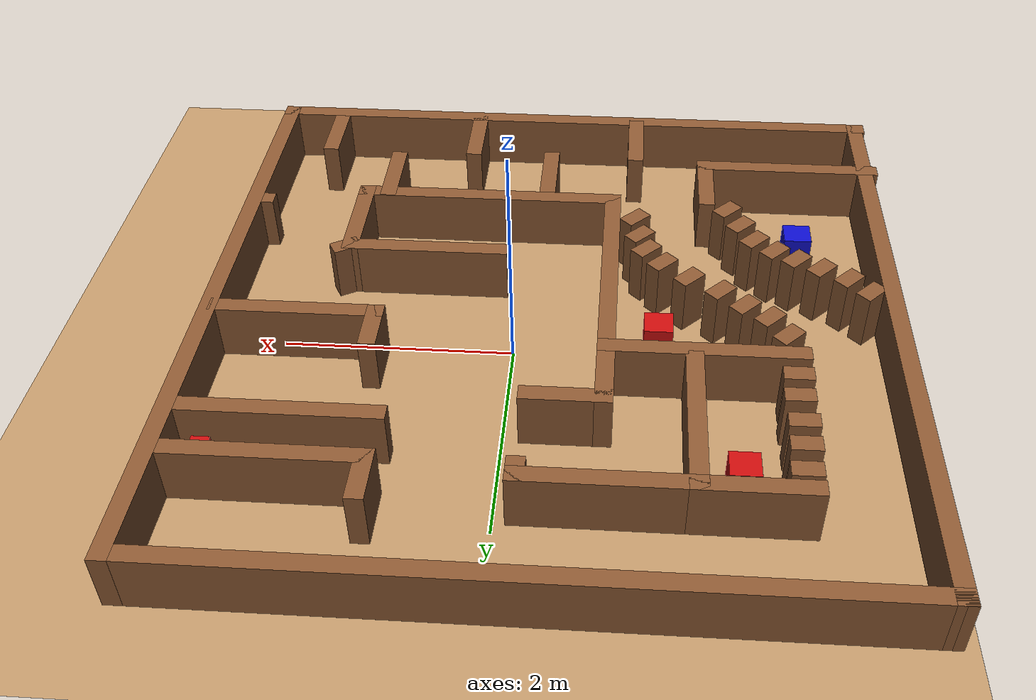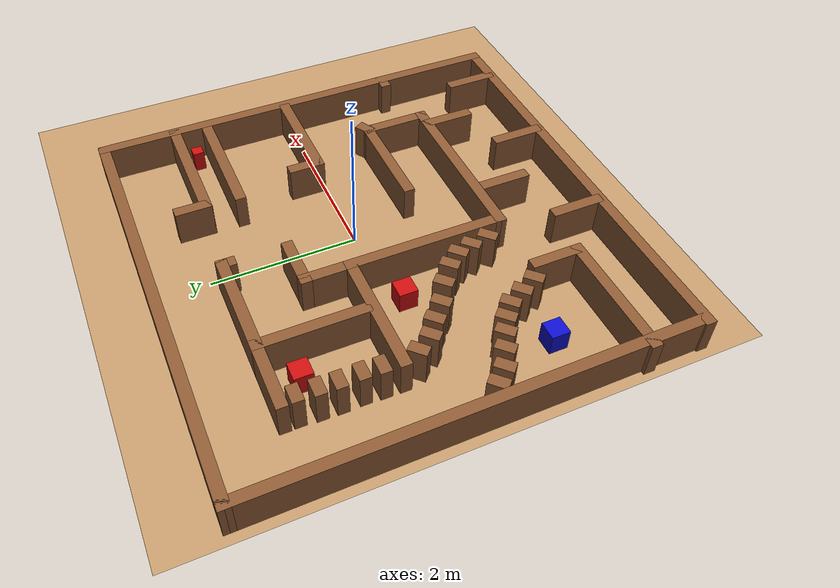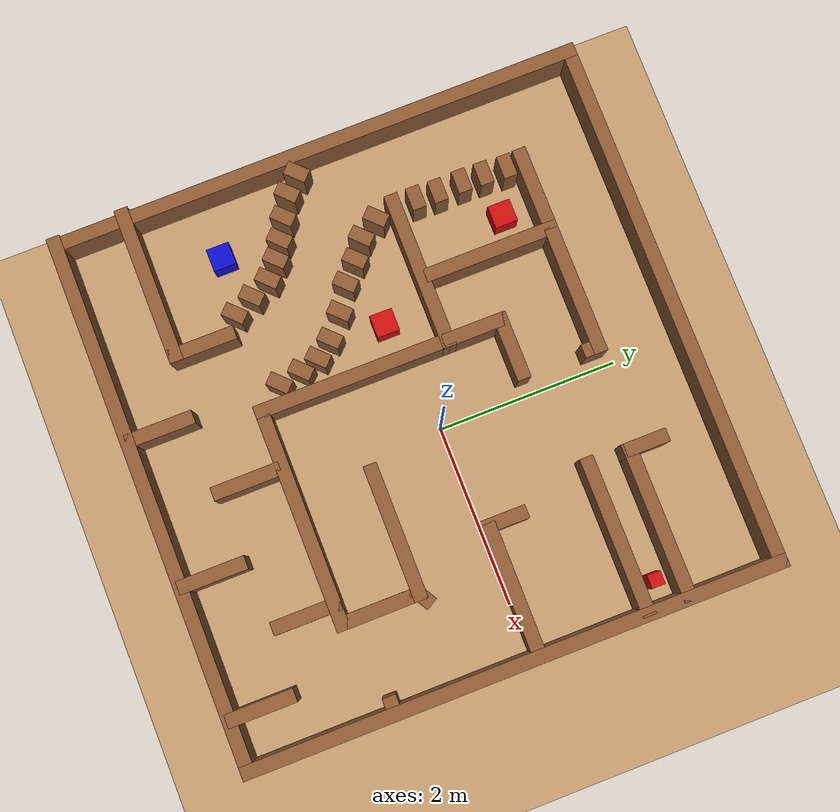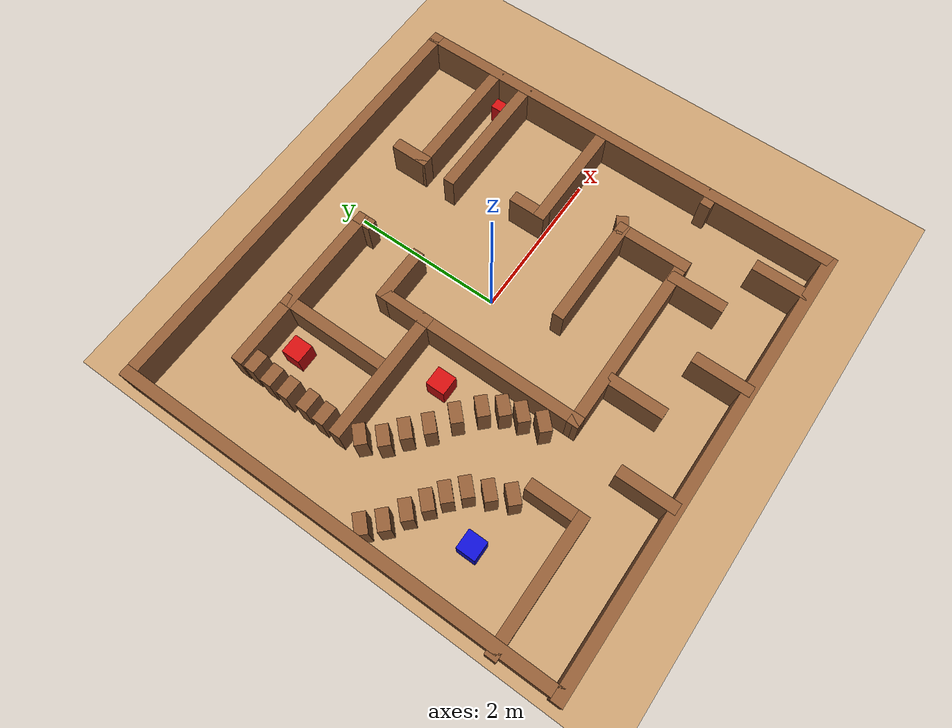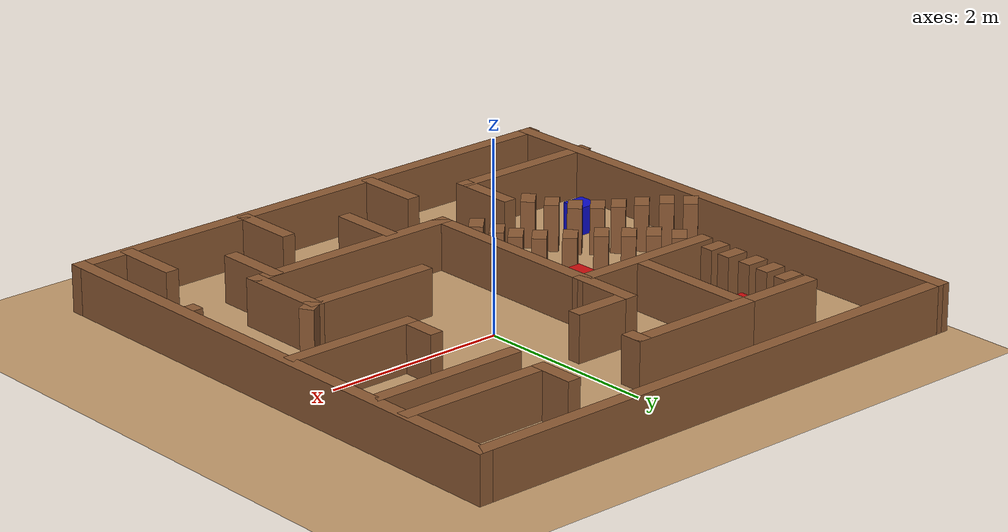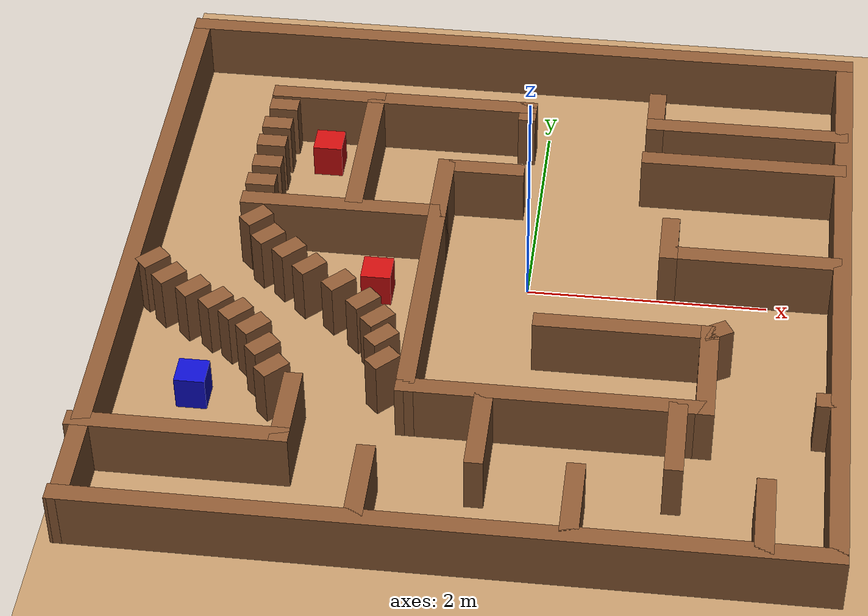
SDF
<sdf version="1.7">
 <world name="laberinto_1_victimas">
  <gravity>0 0 -9.8</gravity>
  <magnetic_field>6e-06 2.3e-05 -4.2e-05</magnetic_field>
  <atmosphere type="adiabatic"/>
  <physics type="ode">
   <max_step_size>0.001</max_step_size>
   <real_time_factor>1</real_time_factor>
   <real_time_update_rate>1000</real_time_update_rate>
  </physics>
  <plugin filename="gz-sim-physics-system" name="gz::sim::systems::Physics"/>
  <plugin filename="gz-sim-user-commands-system" name="gz::sim::systems::UserCommands"/>
  <plugin filename="gz-sim-scene-broadcaster-system" name="gz::sim::systems::SceneBroadcaster"/>
  <plugin filename="gz-sim-contact-system" name="gz::sim::systems::Contact"/>
  <plugin filename="gz-sim-sensors-system" name="gz::sim::systems::Sensors">
   <render_engine>ogre2</render_engine>
  </plugin>
  <plugin filename="gz-sim-imu-system" name="gz::sim::systems::Imu"/>
  <scene><ambient>0.4 0.4 0.4 1</ambient><background>0.7 0.7 0.7 1</background><shadows>1</shadows></scene>
  <include><uri>model://sun</uri></include>
  <audio><device>default</device></audio>
  <spherical_coordinates>
   <surface_model>EARTH_WGS84</surface_model>
   <latitude_deg>0</latitude_deg>
   <longitude_deg>0</longitude_deg>
   <elevation>0</elevation>
   <heading_deg>0</heading_deg>
  </spherical_coordinates>
  <model name="laberinto_1.world">
   <pose>0.295582 -0.1852 0 0 -0 0</pose>
   <link name="Wall_0">
    <collision name="Wall_0_Collision">
     <geometry><box><size>6 0.15 0.5</size></box></geometry>
     <pose>0 0 0.25 0 -0 0</pose>
    </collision>
    <visual name="Wall_0_Visual">
     <pose>0 0 0.25 0 -0 0</pose>
     <geometry><box><size>6 0.15 0.5</size></box></geometry>
     <material>
      <ambient>0.55 0.35 0.2 1</ambient>
      <diffuse>0.55 0.35 0.2 1</diffuse>
      <specular>0.2 0.2 0.2 1</specular>
     </material>
     <meta><layer>0</layer></meta>
    </visual>
    <pose>-0.632945 -2.925 0 0 -0 0</pose>
   </link>
   <link name="Wall_100">
    <collision name="Wall_100_Collision">
     <geometry><box><size>0.25 0.15 0.5</size></box></geometry>
     <pose>0 0 0.25 0 -0 0</pose>
    </collision>
    <visual name="Wall_100_Visual">
     <pose>0 0 0.25 0 -0 0</pose>
     <geometry><box><size>0.25 0.15 0.5</size></box></geometry>
     <material>
      <ambient>0.55 0.35 0.2 1</ambient>
      <diffuse>0.55 0.35 0.2 1</diffuse>
      <specular>0.2 0.2 0.2 1</specular>
     </material>
     <meta><layer>0</layer></meta>
    </visual>
    <pose>-2.96932 -0.572877 0 0 -0 0.785398</pose>
   </link>
   <link name="Wall_102">
    <collision name="Wall_102_Collision">
     <geometry><box><size>0.25 0.15 0.5</size></box></geometry>
     <pose>0 0 0.25 0 -0 0</pose>
    </collision>
    <visual name="Wall_102_Visual">
     <pose>0 0 0.25 0 -0 0</pose>
     <geometry><box><size>0.25 0.15 0.5</size></box></geometry>
     <material>
      <ambient>0.55 0.35 0.2 1</ambient>
      <diffuse>0.55 0.35 0.2 1</diffuse>
      <specular>0.2 0.2 0.2 1</specular>
     </material>
     <meta><layer>0</layer></meta>
    </visual>
    <pose>-3.19415 -0.440627 0 0 -0 0.785398</pose>
   </link>
   <link name="Wall_106">
    <collision name="Wall_106_Collision">
     <geometry><box><size>0.25 0.15 0.5</size></box></geometry>
     <pose>0 0 0.25 0 -0 0</pose>
    </collision>
    <visual name="Wall_106_Visual">
     <pose>0 0 0.25 0 -0 0</pose>
     <geometry><box><size>0.25 0.15 0.5</size></box></geometry>
     <material>
      <ambient>0.55 0.35 0.2 1</ambient>
      <diffuse>0.55 0.35 0.2 1</diffuse>
      <specular>0.2 0.2 0.2 1</specular>
     </material>
     <meta><layer>0</layer></meta>
    </visual>
    <pose>-3.36607 -0.268702 0 0 -0 0.785398</pose>
   </link>
   <link name="Wall_108">
    <collision name="Wall_108_Collision">
     <geometry><box><size>0.25 0.15 0.5</size></box></geometry>
     <pose>0 0 0.25 0 -0 0</pose>
    </collision>
    <visual name="Wall_108_Visual">
     <pose>0 0 0.25 0 -0 0</pose>
     <geometry><box><size>0.25 0.15 0.5</size></box></geometry>
     <material>
      <ambient>0.55 0.35 0.2 1</ambient>
      <diffuse>0.55 0.35 0.2 1</diffuse>
      <specular>0.2 0.2 0.2 1</specular>
     </material>
     <meta><layer>0</layer></meta>
    </visual>
    <pose>-1.31543 -1.23283 0 0 -0 0.785398</pose>
   </link>
   <link name="Wall_11">
    <collision name="Wall_11_Collision">
     <geometry><box><size>2.5 0.15 0.5</size></box></geometry>
     <pose>0 0 0.25 0 -0 0</pose>
    </collision>
    <visual name="Wall_11_Visual">
     <pose>0 0 0.25 0 -0 0</pose>
     <geometry><box><size>2.5 0.15 0.5</size></box></geometry>
     <material>
      <ambient>0.55 0.35 0.2 1</ambient>
      <diffuse>0.55 0.35 0.2 1</diffuse>
      <specular>0.2 0.2 0.2 1</specular>
     </material>
     <meta><layer>0</layer></meta>
    </visual>
    <pose>0.072777 -1.51211 0 0 -0 0</pose>
   </link>
   <link name="Wall_114">
    <collision name="Wall_114_Collision">
     <geometry><box><size>0.25 0.15 0.5</size></box></geometry>
     <pose>0 0 0.25 0 -0 0</pose>
    </collision>
    <visual name="Wall_114_Visual">
     <pose>0 0 0.25 0 -0 0</pose>
     <geometry><box><size>0.25 0.15 0.5</size></box></geometry>
     <material>
      <ambient>0.55 0.35 0.2 1</ambient>
      <diffuse>0.55 0.35 0.2 1</diffuse>
      <specular>0.2 0.2 0.2 1</specular>
     </material>
     <meta><layer>0</layer></meta>
    </visual>
    <pose>-1.42189 -0.761356 0 0 -0 0.785398</pose>
   </link>
   <link name="Wall_117">
    <collision name="Wall_117_Collision">
     <geometry><box><size>0.25 0.15 0.5</size></box></geometry>
     <pose>0 0 0.25 0 -0 0</pose>
    </collision>
    <visual name="Wall_117_Visual">
     <pose>0 0 0.25 0 -0 0</pose>
     <geometry><box><size>0.25 0.15 0.5</size></box></geometry>
     <material>
      <ambient>0.55 0.35 0.2 1</ambient>
      <diffuse>0.55 0.35 0.2 1</diffuse>
      <specular>0.2 0.2 0.2 1</specular>
     </material>
     <meta><layer>0</layer></meta>
    </visual>
    <pose>-1.36106 -0.974279 0 0 -0 0.785398</pose>
   </link>
   <link name="Wall_120">
    <collision name="Wall_120_Collision">
     <geometry><box><size>0.25 0.15 0.5</size></box></geometry>
     <pose>0 0 0.25 0 -0 0</pose>
    </collision>
    <visual name="Wall_120_Visual">
     <pose>0 0 0.25 0 -0 0</pose>
     <geometry><box><size>0.25 0.15 0.5</size></box></geometry>
     <material>
      <ambient>0.55 0.35 0.2 1</ambient>
      <diffuse>0.55 0.35 0.2 1</diffuse>
      <specular>0.2 0.2 0.2 1</specular>
     </material>
     <meta><layer>0</layer></meta>
    </visual>
    <pose>-1.56638 -0.571247 0 0 -0 0.785398</pose>
   </link>
   <link name="Wall_122">
    <collision name="Wall_122_Collision">
     <geometry><box><size>0.25 0.15 0.5</size></box></geometry>
     <pose>0 0 0.25 0 -0 0</pose>
    </collision>
    <visual name="Wall_122_Visual">
     <pose>0 0 0.25 0 -0 0</pose>
     <geometry><box><size>0.25 0.15 0.5</size></box></geometry>
     <material>
      <ambient>0.55 0.35 0.2 1</ambient>
      <diffuse>0.55 0.35 0.2 1</diffuse>
      <specular>0.2 0.2 0.2 1</specular>
     </material>
     <meta><layer>0</layer></meta>
    </visual>
    <pose>-1.79903 -0.373558 0 0 -0 0.785398</pose>
   </link>
   <link name="Wall_124">
    <collision name="Wall_124_Collision">
     <geometry><box><size>0.25 0.15 0.5</size></box></geometry>
     <pose>0 0 0.25 0 -0 0</pose>
    </collision>
    <visual name="Wall_124_Visual">
     <pose>0 0 0.25 0 -0 0</pose>
     <geometry><box><size>0.25 0.15 0.5</size></box></geometry>
     <material>
      <ambient>0.55 0.35 0.2 1</ambient>
      <diffuse>0.55 0.35 0.2 1</diffuse>
      <specular>0.2 0.2 0.2 1</specular>
     </material>
     <meta><layer>0</layer></meta>
    </visual>
    <pose>-2.06648 -0.206781 0 0 -0 0.785398</pose>
   </link>
   <link name="Wall_127">
    <collision name="Wall_127_Collision">
     <geometry><box><size>0.25 0.15 0.5</size></box></geometry>
     <pose>0 0 0.25 0 -0 0</pose>
    </collision>
    <visual name="Wall_127_Visual">
     <pose>0 0 0.25 0 -0 0</pose>
     <geometry><box><size>0.25 0.15 0.5</size></box></geometry>
     <material>
      <ambient>0.55 0.35 0.2 1</ambient>
      <diffuse>0.55 0.35 0.2 1</diffuse>
      <specular>0.2 0.2 0.2 1</specular>
     </material>
     <meta><layer>0</layer></meta>
    </visual>
    <pose>-2.26761 -0.023135 0 0 -0 0.785398</pose>
   </link>
   <link name="Wall_129">
    <collision name="Wall_129_Collision">
     <geometry><box><size>0.25 0.15 0.5</size></box></geometry>
     <pose>0 0 0.25 0 -0 0</pose>
    </collision>
    <visual name="Wall_129_Visual">
     <pose>0 0 0.25 0 -0 0</pose>
     <geometry><box><size>0.25 0.15 0.5</size></box></geometry>
     <material>
      <ambient>0.55 0.35 0.2 1</ambient>
      <diffuse>0.55 0.35 0.2 1</diffuse>
      <specular>0.2 0.2 0.2 1</specular>
     </material>
     <meta><layer>0</layer></meta>
    </visual>
    <pose>-2.46875 0.12553 0 0 -0 0.785398</pose>
   </link>
   <link name="Wall_13">
    <collision name="Wall_13_Collision">
     <geometry><box><size>0.75 0.15 0.5</size></box></geometry>
     <pose>0 0 0.25 0 -0 0</pose>
    </collision>
    <visual name="Wall_13_Visual">
     <pose>0 0 0.25 0 -0 0</pose>
     <geometry><box><size>0.75 0.15 0.5</size></box></geometry>
     <material>
      <ambient>0.55 0.35 0.2 1</ambient>
      <diffuse>0.55 0.35 0.2 1</diffuse>
      <specular>0.2 0.2 0.2 1</specular>
     </material>
     <meta><layer>0</layer></meta>
    </visual>
    <pose>-0.473455 -1.91491 0 0 -0 -1.5708</pose>
   </link>
   <link name="Wall_131">
    <collision name="Wall_131_Collision">
     <geometry><box><size>0.25 0.15 0.5</size></box></geometry>
     <pose>0 0 0.25 0 -0 0</pose>
    </collision>
    <visual name="Wall_131_Visual">
     <pose>0 0 0.25 0 -0 0</pose>
     <geometry><box><size>0.25 0.15 0.5</size></box></geometry>
     <material>
      <ambient>0.55 0.35 0.2 1</ambient>
      <diffuse>0.55 0.35 0.2 1</diffuse>
      <specular>0.2 0.2 0.2 1</specular>
     </material>
     <meta><layer>0</layer></meta>
    </visual>
    <pose>-2.60803 0.344586 0 0 -0 0.785398</pose>
   </link>
   <link name="Wall_145">
    <collision name="Wall_145_Collision">
     <geometry><box><size>1 0.15 0.5</size></box></geometry>
     <pose>0 0 0.25 0 -0 0</pose>
    </collision>
    <visual name="Wall_145_Visual">
     <pose>0 0 0.25 0 -0 0</pose>
     <geometry><box><size>1 0.15 0.5</size></box></geometry>
     <material>
      <ambient>0.55 0.35 0.2 1</ambient>
      <diffuse>0.55 0.35 0.2 1</diffuse>
      <specular>0.2 0.2 0.2 1</specular>
     </material>
     <meta><layer>0</layer></meta>
    </visual>
    <pose>1.24778 -1.08711 0 0 -0 1.5708</pose>
   </link>
   <link name="Wall_146">
    <collision name="Wall_146_Collision">
     <geometry><box><size>1.5 0.15 0.5</size></box></geometry>
     <pose>0 0 0.25 0 -0 0</pose>
    </collision>
    <visual name="Wall_146_Visual">
     <pose>0 0 0.25 0 -0 0</pose>
     <geometry><box><size>1.5 0.15 0.5</size></box></geometry>
     <material>
      <ambient>0.55 0.35 0.2 1</ambient>
      <diffuse>0.55 0.35 0.2 1</diffuse>
      <specular>0.2 0.2 0.2 1</specular>
     </material>
     <meta><layer>0</layer></meta>
    </visual>
    <pose>0.572777 -0.662113 0 0 -0 3.14159</pose>
   </link>
   <link name="Wall_15">
    <collision name="Wall_15_Collision">
     <geometry><box><size>0.75 0.15 0.5</size></box></geometry>
     <pose>0 0 0.25 0 -0 0</pose>
    </collision>
    <visual name="Wall_15_Visual">
     <pose>0 0 0.25 0 -0 0</pose>
     <geometry><box><size>0.75 0.15 0.5</size></box></geometry>
     <material>
      <ambient>0.55 0.35 0.2 1</ambient>
      <diffuse>0.55 0.35 0.2 1</diffuse>
      <specular>0.2 0.2 0.2 1</specular>
     </material>
     <meta><layer>0</layer></meta>
    </visual>
    <pose>0.304644 -2.57972 0 0 -0 1.5708</pose>
   </link>
   <link name="Wall_158">
    <collision name="Wall_158_Collision">
     <geometry><box><size>1.75 0.15 0.5</size></box></geometry>
     <pose>0 0 0.25 0 -0 0</pose>
    </collision>
    <visual name="Wall_158_Visual">
     <pose>0 0 0.25 0 -0 0</pose>
     <geometry><box><size>1.75 0.15 0.5</size></box></geometry>
     <material>
      <ambient>0.55 0.35 0.2 1</ambient>
      <diffuse>0.55 0.35 0.2 1</diffuse>
      <specular>0.2 0.2 0.2 1</specular>
     </material>
     <meta><layer>0</layer></meta>
    </visual>
    <pose>1.43852 1.46039 0 0 -0 3.14159</pose>
   </link>
   <link name="Wall_168">
    <collision name="Wall_168_Collision">
     <geometry><box><size>1 0.15 0.5</size></box></geometry>
     <pose>0 0 0.25 0 -0 0</pose>
    </collision>
    <visual name="Wall_168_Visual">
     <pose>0 0 0.25 0 -0 0</pose>
     <geometry><box><size>1 0.15 0.5</size></box></geometry>
     <material>
      <ambient>0.55 0.35 0.2 1</ambient>
      <diffuse>0.55 0.35 0.2 1</diffuse>
      <specular>0.2 0.2 0.2 1</specular>
     </material>
     <meta><layer>0</layer></meta>
    </visual>
    <pose>-2.24782 2.02318 0 0 -0 0</pose>
   </link>
   <link name="Wall_17">
    <collision name="Wall_17_Collision">
     <geometry><box><size>0.75 0.15 0.5</size></box></geometry>
     <pose>0 0 0.25 0 -0 0</pose>
    </collision>
    <visual name="Wall_17_Visual">
     <pose>0 0 0.25 0 -0 0</pose>
     <geometry><box><size>0.75 0.15 0.5</size></box></geometry>
     <material>
      <ambient>0.55 0.35 0.2 1</ambient>
      <diffuse>0.55 0.35 0.2 1</diffuse>
      <specular>0.2 0.2 0.2 1</specular>
     </material>
     <meta><layer>0</layer></meta>
    </visual>
    <pose>1.04058 -1.82343 0 0 -0 -1.5708</pose>
   </link>
   <link name="Wall_179">
    <collision name="Wall_179_Collision">
     <geometry><box><size>0.25 0.15 0.5</size></box></geometry>
     <pose>0 0 0.25 0 -0 0</pose>
    </collision>
    <visual name="Wall_179_Visual">
     <pose>0 0 0.25 0 -0 0</pose>
     <geometry><box><size>0.25 0.15 0.5</size></box></geometry>
     <material>
      <ambient>0.55 0.35 0.2 1</ambient>
      <diffuse>0.55 0.35 0.2 1</diffuse>
      <specular>0.2 0.2 0.2 1</specular>
     </material>
     <meta><layer>0</layer></meta>
    </visual>
    <pose>-2.64775 0.810881 0 0 -0 0</pose>
   </link>
   <link name="Wall_183">
    <collision name="Wall_183_Collision">
     <geometry><box><size>0.25 0.15 0.5</size></box></geometry>
     <pose>0 0 0.25 0 -0 0</pose>
    </collision>
    <visual name="Wall_183_Visual">
     <pose>0 0 0.25 0 -0 0</pose>
     <geometry><box><size>0.25 0.15 0.5</size></box></geometry>
     <material>
      <ambient>0.55 0.35 0.2 1</ambient>
      <diffuse>0.55 0.35 0.2 1</diffuse>
      <specular>0.2 0.2 0.2 1</specular>
     </material>
     <meta><layer>0</layer></meta>
    </visual>
    <pose>-2.63604 1.05688 0 0 -0 0</pose>
   </link>
   <link name="Wall_187">
    <collision name="Wall_187_Collision">
     <geometry><box><size>0.25 0.15 0.5</size></box></geometry>
     <pose>0 0 0.25 0 -0 0</pose>
    </collision>
    <visual name="Wall_187_Visual">
     <pose>0 0 0.25 0 -0 0</pose>
     <geometry><box><size>0.25 0.15 0.5</size></box></geometry>
     <material>
      <ambient>0.55 0.35 0.2 1</ambient>
      <diffuse>0.55 0.35 0.2 1</diffuse>
      <specular>0.2 0.2 0.2 1</specular>
     </material>
     <meta><layer>0</layer></meta>
    </visual>
    <pose>-2.64359 1.33362 0 0 -0 0</pose>
   </link>
   <link name="Wall_189">
    <collision name="Wall_189_Collision">
     <geometry><box><size>0.25 0.15 0.5</size></box></geometry>
     <pose>0 0 0.25 0 -0 0</pose>
    </collision>
    <visual name="Wall_189_Visual">
     <pose>0 0 0.25 0 -0 0</pose>
     <geometry><box><size>0.25 0.15 0.5</size></box></geometry>
     <material>
      <ambient>0.55 0.35 0.2 1</ambient>
      <diffuse>0.55 0.35 0.2 1</diffuse>
      <specular>0.2 0.2 0.2 1</specular>
     </material>
     <meta><layer>0</layer></meta>
    </visual>
    <pose>-2.63671 1.57983 0 0 -0 0</pose>
   </link>
   <link name="Wall_19">
    <collision name="Wall_19_Collision">
     <geometry><box><size>0.75 0.15 0.5</size></box></geometry>
     <pose>0 0 0.25 0 -0 0</pose>
    </collision>
    <visual name="Wall_19_Visual">
     <pose>0 0 0.25 0 -0 0</pose>
     <geometry><box><size>0.75 0.15 0.5</size></box></geometry>
     <material>
      <ambient>0.55 0.35 0.2 1</ambient>
      <diffuse>0.55 0.35 0.2 1</diffuse>
      <specular>0.2 0.2 0.2 1</specular>
     </material>
     <meta><layer>0</layer></meta>
    </visual>
    <pose>1.74496 -2.58248 0 0 -0 1.5708</pose>
   </link>
   <link name="Wall_191">
    <collision name="Wall_191_Collision">
     <geometry><box><size>0.25 0.15 0.5</size></box></geometry>
     <pose>0 0 0.25 0 -0 0</pose>
    </collision>
    <visual name="Wall_191_Visual">
     <pose>0 0 0.25 0 -0 0</pose>
     <geometry><box><size>0.25 0.15 0.5</size></box></geometry>
     <material>
      <ambient>0.55 0.35 0.2 1</ambient>
      <diffuse>0.55 0.35 0.2 1</diffuse>
      <specular>0.2 0.2 0.2 1</specular>
     </material>
     <meta><layer>0</layer></meta>
    </visual>
    <pose>-2.61941 1.83923 0 0 -0 0</pose>
   </link>
   <link name="Wall_193">
    <collision name="Wall_193_Collision">
     <geometry><box><size>1.5 0.15 0.5</size></box></geometry>
     <pose>0 0 0.25 0 -0 0</pose>
    </collision>
    <visual name="Wall_193_Visual">
     <pose>0 0 0.25 0 -0 0</pose>
     <geometry><box><size>1.5 0.15 0.5</size></box></geometry>
     <material>
      <ambient>0.55 0.35 0.2 1</ambient>
      <diffuse>0.55 0.35 0.2 1</diffuse>
      <specular>0.2 0.2 0.2 1</specular>
     </material>
     <meta><layer>0</layer></meta>
    </visual>
    <pose>-1.82282 1.34817 0 0 -0 -1.5708</pose>
   </link>
   <link name="Wall_195">
    <collision name="Wall_195_Collision">
     <geometry><box><size>1.5 0.15 0.5</size></box></geometry>
     <pose>0 0 0.25 0 -0 0</pose>
    </collision>
    <visual name="Wall_195_Visual">
     <pose>0 0 0.25 0 -0 0</pose>
     <geometry><box><size>1.5 0.15 0.5</size></box></geometry>
     <material>
      <ambient>0.55 0.35 0.2 1</ambient>
      <diffuse>0.55 0.35 0.2 1</diffuse>
      <specular>0.2 0.2 0.2 1</specular>
     </material>
     <meta><layer>0</layer></meta>
    </visual>
    <pose>-1.14782 2.02318 0 0 -0 0</pose>
   </link>
   <link name="Wall_198">
    <collision name="Wall_198_Collision">
     <geometry><box><size>2.23146 0.15 0.5</size></box></geometry>
     <pose>0 0 0.25 0 -0 0</pose>
    </collision>
    <visual name="Wall_198_Visual">
     <pose>0 0 0.25 0 -0 0</pose>
     <geometry><box><size>2.23146 0.15 0.5</size></box></geometry>
     <material>
      <ambient>0.55 0.35 0.2 1</ambient>
      <diffuse>0.55 0.35 0.2 1</diffuse>
      <specular>0.2 0.2 0.2 1</specular>
     </material>
     <meta><layer>0</layer></meta>
    </visual>
    <pose>-1.10157 -0.471381 0 0 -0 1.57017</pose>
   </link>
   <link name="Wall_2">
    <collision name="Wall_2_Collision">
     <geometry><box><size>6 0.15 0.5</size></box></geometry>
     <pose>0 0 0.25 0 -0 0</pose>
    </collision>
    <visual name="Wall_2_Visual">
     <pose>0 0 0.25 0 -0 0</pose>
     <geometry><box><size>6 0.15 0.5</size></box></geometry>
     <material>
      <ambient>0.55 0.35 0.2 1</ambient>
      <diffuse>0.55 0.35 0.2 1</diffuse>
      <specular>0.2 0.2 0.2 1</specular>
     </material>
     <meta><layer>0</layer></meta>
    </visual>
    <pose>-0.632945 2.925 0 0 -0 3.14159</pose>
   </link>
   <link name="Wall_200">
    <collision name="Wall_200_Collision">
     <geometry><box><size>1.5 0.15 0.5</size></box></geometry>
     <pose>0 0 0.25 0 -0 0</pose>
    </collision>
    <visual name="Wall_200_Visual">
     <pose>0 0 0.25 0 -0 0</pose>
     <geometry><box><size>1.5 0.15 0.5</size></box></geometry>
     <material>
      <ambient>0.55 0.35 0.2 1</ambient>
      <diffuse>0.55 0.35 0.2 1</diffuse>
      <specular>0.2 0.2 0.2 1</specular>
     </material>
     <meta><layer>0</layer></meta>
    </visual>
    <pose>1.53728 0.261185 0 0 -0 3.14159</pose>
   </link>
   <link name="Wall_202">
    <collision name="Wall_202_Collision">
     <geometry><box><size>0.5 0.15 0.5</size></box></geometry>
     <pose>0 0 0.25 0 -0 0</pose>
    </collision>
    <visual name="Wall_202_Visual">
     <pose>0 0 0.25 0 -0 0</pose>
     <geometry><box><size>0.5 0.15 0.5</size></box></geometry>
     <material>
      <ambient>0.55 0.35 0.2 1</ambient>
      <diffuse>0.55 0.35 0.2 1</diffuse>
      <specular>0.2 0.2 0.2 1</specular>
     </material>
     <meta><layer>0</layer></meta>
    </visual>
    <pose>0.862276 0.436185 0 0 -0 1.5708</pose>
   </link>
   <link name="Wall_205">
    <collision name="Wall_205_Collision">
     <geometry><box><size>6 0.15 0.5</size></box></geometry>
     <pose>0 0 0.25 0 -0 0</pose>
    </collision>
    <visual name="Wall_205_Visual">
     <pose>0 0 0.25 0 -0 0</pose>
     <geometry><box><size>6 0.15 0.5</size></box></geometry>
     <material>
      <ambient>0.55 0.35 0.2 1</ambient>
      <diffuse>0.55 0.35 0.2 1</diffuse>
      <specular>0.2 0.2 0.2 1</specular>
     </material>
     <meta><layer>0</layer></meta>
    </visual>
    <pose>2.29205 0 0 0 -0 -1.5708</pose>
   </link>
   <link name="Wall_209">
    <collision name="Wall_209_Collision">
     <geometry><box><size>0.75 0.15 0.5</size></box></geometry>
     <pose>0 0 0.25 0 -0 0</pose>
    </collision>
    <visual name="Wall_209_Visual">
     <pose>0 0 0.25 0 -0 0</pose>
     <geometry><box><size>0.75 0.15 0.5</size></box></geometry>
     <material>
      <ambient>0.55 0.35 0.2 1</ambient>
      <diffuse>0.55 0.35 0.2 1</diffuse>
      <specular>0.2 0.2 0.2 1</specular>
     </material>
     <meta><layer>0</layer></meta>
    </visual>
    <pose>-1.10092 0.869351 0 0 -0 1.5708</pose>
   </link>
   <link name="Wall_215">
    <collision name="Wall_215_Collision">
     <geometry><box><size>0.25 0.15 0.5</size></box></geometry>
     <pose>0 0 0.25 0 -0 0</pose>
    </collision>
    <visual name="Wall_215_Visual">
     <pose>0 0 0.25 0 -0 0</pose>
     <geometry><box><size>0.25 0.15 0.5</size></box></geometry>
     <material>
      <ambient>0.55 0.35 0.2 1</ambient>
      <diffuse>0.55 0.35 0.2 1</diffuse>
      <specular>0.2 0.2 0.2 1</specular>
     </material>
     <meta><layer>0</layer></meta>
    </visual>
    <pose>2.22848 -1.32531 0 0 -0 3.14159</pose>
   </link>
   <link name="Wall_217">
    <collision name="Wall_217_Collision">
     <geometry><box><size>0.25 0.15 0.5</size></box></geometry>
     <pose>0 0 0.25 0 -0 0</pose>
    </collision>
    <visual name="Wall_217_Visual">
     <pose>0 0 0.25 0 -0 0</pose>
     <geometry><box><size>0.25 0.15 0.5</size></box></geometry>
     <material>
      <ambient>0.55 0.35 0.2 1</ambient>
      <diffuse>0.55 0.35 0.2 1</diffuse>
      <specular>0.2 0.2 0.2 1</specular>
     </material>
     <meta><layer>0</layer></meta>
    </visual>
    <pose>1.29108 -0.637113 0 0 -0 0.523599</pose>
   </link>
   <link name="Wall_220">
    <collision name="Wall_220_Collision">
     <geometry><box><size>0.75 0.15 0.5</size></box></geometry>
     <pose>0 0 0.25 0 -0 0</pose>
    </collision>
    <visual name="Wall_220_Visual">
     <pose>0 0 0.25 0 -0 0</pose>
     <geometry><box><size>0.75 0.15 0.5</size></box></geometry>
     <material>
      <ambient>0.55 0.35 0.2 1</ambient>
      <diffuse>0.55 0.35 0.2 1</diffuse>
      <specular>0.2 0.2 0.2 1</specular>
     </material>
     <meta><layer>0</layer></meta>
    </visual>
    <pose>-0.800923 1.16935 0 0 -0 0</pose>
   </link>
   <link name="Wall_228">
    <collision name="Wall_228_Collision">
     <geometry><box><size>0.25 0.15 0.5</size></box></geometry>
     <pose>0 0 0.25 0 -0 0</pose>
    </collision>
    <visual name="Wall_228_Visual">
     <pose>0 0 0.25 0 -0 0</pose>
     <geometry><box><size>0.25 0.15 0.5</size></box></geometry>
     <material>
      <ambient>0.55 0.35 0.2 1</ambient>
      <diffuse>0.55 0.35 0.2 1</diffuse>
      <specular>0.2 0.2 0.2 1</specular>
     </material>
     <meta><layer>0</layer></meta>
    </visual>
    <pose>-0.472815 1.97317 0 0 -0 -1.5708</pose>
   </link>
   <link name="Wall_3">
    <collision name="Wall_3_Collision">
     <geometry><box><size>6 0.15 0.5</size></box></geometry>
     <pose>0 0 0.25 0 -0 0</pose>
    </collision>
    <visual name="Wall_3_Visual">
     <pose>0 0 0.25 0 -0 0</pose>
     <geometry><box><size>6 0.15 0.5</size></box></geometry>
     <material>
      <ambient>0.55 0.35 0.2 1</ambient>
      <diffuse>0.55 0.35 0.2 1</diffuse>
      <specular>0.2 0.2 0.2 1</specular>
     </material>
     <meta><layer>0</layer></meta>
    </visual>
    <pose>-3.54644 0 0 0 -0 -1.56686</pose>
   </link>
   <link name="Wall_382">
    <collision name="Wall_382_Collision">
     <geometry><box><size>1.75 0.15 0.5</size></box></geometry>
     <pose>0 0 0.25 0 -0 0</pose>
    </collision>
    <visual name="Wall_382_Visual">
     <pose>0 0 0.25 0 -0 0</pose>
     <geometry><box><size>1.75 0.15 0.5</size></box></geometry>
     <material>
      <ambient>0.55 0.35 0.2 1</ambient>
      <diffuse>0.55 0.35 0.2 1</diffuse>
      <specular>0.2 0.2 0.2 1</specular>
     </material>
     <meta><layer>0</layer></meta>
    </visual>
    <pose>1.45131 1.91787 0 0 -0 3.14159</pose>
   </link>
   <link name="Wall_384">
    <collision name="Wall_384_Collision">
     <geometry><box><size>0.5 0.15 0.5</size></box></geometry>
     <pose>0 0 0.25 0 -0 0</pose>
    </collision>
    <visual name="Wall_384_Visual">
     <pose>0 0 0.25 0 -0 0</pose>
     <geometry><box><size>0.5 0.15 0.5</size></box></geometry>
     <material>
      <ambient>0.55 0.35 0.2 1</ambient>
      <diffuse>0.55 0.35 0.2 1</diffuse>
      <specular>0.2 0.2 0.2 1</specular>
     </material>
     <meta><layer>0</layer></meta>
    </visual>
    <pose>0.651309 2.09287 0 0 -0 1.5708</pose>
   </link>
   <link name="Wall_50">
    <collision name="Wall_50_Collision">
     <geometry><box><size>1.75 0.15 0.5</size></box></geometry>
     <pose>0 0 0.25 0 -0 0</pose>
    </collision>
    <visual name="Wall_50_Visual">
     <pose>0 0 0.25 0 -0 0</pose>
     <geometry><box><size>1.75 0.15 0.5</size></box></geometry>
     <material>
      <ambient>0.55 0.35 0.2 1</ambient>
      <diffuse>0.55 0.35 0.2 1</diffuse>
      <specular>0.2 0.2 0.2 1</specular>
     </material>
     <meta><layer>0</layer></meta>
    </visual>
    <pose>-2.78748 -2.15251 0 0 -0 3.14159</pose>
   </link>
   <link name="Wall_6">
    <collision name="Wall_6_Collision">
     <geometry><box><size>0.75 0.15 0.5</size></box></geometry>
     <pose>0 0 0.25 0 -0 0</pose>
    </collision>
    <visual name="Wall_6_Visual">
     <pose>0 0 0.25 0 -0 0</pose>
     <geometry><box><size>0.75 0.15 0.5</size></box></geometry>
     <material>
      <ambient>0.55 0.35 0.2 1</ambient>
      <diffuse>0.55 0.35 0.2 1</diffuse>
      <specular>0.2 0.2 0.2 1</specular>
     </material>
     <meta><layer>0</layer></meta>
    </visual>
    <pose>-1.98748 -1.85251 0 0 -0 1.5708</pose>
   </link>
   <link name="Wall_71">
    <collision name="Wall_71_Collision">
     <geometry><box><size>1.75 0.15 0.5</size></box></geometry>
     <pose>0 0 0.25 0 -0 0</pose>
    </collision>
    <visual name="Wall_71_Visual">
     <pose>0 0 0.25 0 -0 0</pose>
     <geometry><box><size>1.75 0.15 0.5</size></box></geometry>
     <material>
      <ambient>0.55 0.35 0.2 1</ambient>
      <diffuse>0.55 0.35 0.2 1</diffuse>
      <specular>0.2 0.2 0.2 1</specular>
     </material>
     <meta><layer>0</layer></meta>
    </visual>
    <pose>-1.90092 0.569351 0 0 -0 0</pose>
   </link>
   <link name="Wall_8">
    <collision name="Wall_8_Collision">
     <geometry><box><size>0.75 0.15 0.5</size></box></geometry>
     <pose>0 0 0.25 0 -0 0</pose>
    </collision>
    <visual name="Wall_8_Visual">
     <pose>0 0 0.25 0 -0 0</pose>
     <geometry><box><size>0.75 0.15 0.5</size></box></geometry>
     <material>
      <ambient>0.55 0.35 0.2 1</ambient>
      <diffuse>0.55 0.35 0.2 1</diffuse>
      <specular>0.2 0.2 0.2 1</specular>
     </material>
     <meta><layer>0</layer></meta>
    </visual>
    <pose>-1.30638 -2.5665 0 0 -0 1.5708</pose>
   </link>
   <link name="Wall_86">
    <collision name="Wall_86_Collision">
     <geometry><box><size>0.25 0.15 0.5</size></box></geometry>
     <pose>0 0 0.25 0 -0 0</pose>
    </collision>
    <visual name="Wall_86_Visual">
     <pose>0 0 0.25 0 -0 0</pose>
     <geometry><box><size>0.25 0.15 0.5</size></box></geometry>
     <material>
      <ambient>0.55 0.35 0.2 1</ambient>
      <diffuse>0.55 0.35 0.2 1</diffuse>
      <specular>0.2 0.2 0.2 1</specular>
     </material>
     <meta><layer>0</layer></meta>
    </visual>
    <pose>-2.17483 -1.41266 0 0 -0 0.785398</pose>
   </link>
   <link name="Wall_88">
    <collision name="Wall_88_Collision">
     <geometry><box><size>0.25 0.15 0.5</size></box></geometry>
     <pose>0 0 0.25 0 -0 0</pose>
    </collision>
    <visual name="Wall_88_Visual">
     <pose>0 0 0.25 0 -0 0</pose>
     <geometry><box><size>0.25 0.15 0.5</size></box></geometry>
     <material>
      <ambient>0.55 0.35 0.2 1</ambient>
      <diffuse>0.55 0.35 0.2 1</diffuse>
      <specular>0.2 0.2 0.2 1</specular>
     </material>
     <meta><layer>0</layer></meta>
    </visual>
    <pose>-2.28823 -1.18123 0 0 -0 0.785398</pose>
   </link>
   <link name="Wall_92">
    <collision name="Wall_92_Collision">
     <geometry><box><size>0.25 0.15 0.5</size></box></geometry>
     <pose>0 0 0.25 0 -0 0</pose>
    </collision>
    <visual name="Wall_92_Visual">
     <pose>0 0 0.25 0 -0 0</pose>
     <geometry><box><size>0.25 0.15 0.5</size></box></geometry>
     <material>
      <ambient>0.55 0.35 0.2 1</ambient>
      <diffuse>0.55 0.35 0.2 1</diffuse>
      <specular>0.2 0.2 0.2 1</specular>
     </material>
     <meta><layer>0</layer></meta>
    </visual>
    <pose>-2.40065 -0.956402 0 0 -0 0.785398</pose>
   </link>
   <link name="Wall_95">
    <collision name="Wall_95_Collision">
     <geometry><box><size>0.25 0.15 0.5</size></box></geometry>
     <pose>0 0 0.25 0 -0 0</pose>
    </collision>
    <visual name="Wall_95_Visual">
     <pose>0 0 0.25 0 -0 0</pose>
     <geometry><box><size>0.25 0.15 0.5</size></box></geometry>
     <material>
      <ambient>0.55 0.35 0.2 1</ambient>
      <diffuse>0.55 0.35 0.2 1</diffuse>
      <specular>0.2 0.2 0.2 1</specular>
     </material>
     <meta><layer>0</layer></meta>
    </visual>
    <pose>-2.57257 -0.804314 0 0 -0 0.785398</pose>
   </link>
   <link name="Wall_98">
    <collision name="Wall_98_Collision">
     <geometry><box><size>0.25 0.15 0.5</size></box></geometry>
     <pose>0 0 0.25 0 -0 0</pose>
    </collision>
    <visual name="Wall_98_Visual">
     <pose>0 0 0.25 0 -0 0</pose>
     <geometry><box><size>0.25 0.15 0.5</size></box></geometry>
     <material>
      <ambient>0.55 0.35 0.2 1</ambient>
      <diffuse>0.55 0.35 0.2 1</diffuse>
      <specular>0.2 0.2 0.2 1</specular>
     </material>
     <meta><layer>0</layer></meta>
    </visual>
    <pose>-2.75772 -0.691902 0 0 -0 0.785398</pose>
   </link>
   <static>1</static>
  </model>
  <model name="flor">
   <static>1</static>
   <link name="link">
    <collision name="collision">
     <geometry><plane><normal>0 0 1</normal><size>7.5 7.5</size></plane></geometry>
     <surface>
      <contact><collide_bitmask>65535</collide_bitmask></contact>
      <friction><ode><mu>100</mu><mu2>50</mu2></ode></friction>
     </surface>
    </collision>
    <visual name="visual">
     <cast_shadows>0</cast_shadows>
     <geometry><plane><normal>0 0 1</normal><size>7.5 7.5</size></plane></geometry>
     <material>
      <ambient>0.76 0.6 0.42 1</ambient>
      <diffuse>0.76 0.6 0.42 1</diffuse>
      <specular>0.2 0.2 0.2 1</specular>
     </material>
    </visual>
   </link>
   <pose>0.295582 -0.185198 0 0 0 0</pose>
  </model>
  <model name="marcas_color">
   <static>1</static>
   <link name="cuadrado_rojo_1">
    <pose>-1.2468 -0.158 0.15 0 0 0</pose>
    <collision name="collision"><geometry><box><size>0.25 0.25 0.3</size></box></geometry></collision>
    <visual name="visual">
     <geometry><box><size>0.25 0.25 0.3</size></box></geometry>
     <material>
      <ambient>0.8 0.05 0.05 1</ambient>
      <diffuse>0.8 0.05 0.05 1</diffuse>
      <specular>0.1 0.1 0.1 1</specular>
     </material>
    </visual>
   </link>
   <link name="cuadrado_rojo_2">
    <pose>-1.9 1.45 0.15 0 0 0</pose>
    <collision name="collision"><geometry><box><size>0.25 0.25 0.3</size></box></geometry></collision>
    <visual name="visual">
     <geometry><box><size>0.25 0.25 0.3</size></box></geometry>
     <material>
      <ambient>0.8 0.05 0.05 1</ambient>
      <diffuse>0.8 0.05 0.05 1</diffuse>
      <specular>0.1 0.1 0.1 1</specular>
     </material>
    </visual>
   </link>
   <link name="cuadrado_azul_1">
    <pose>-2.547 -1.5286 0.15 0 0 0</pose>
    <collision name="collision"><geometry><box><size>0.25 0.25 0.3</size></box></geometry></collision>
    <visual name="visual">
     <geometry><box><size>0.25 0.25 0.3</size></box></geometry>
     <material>
      <ambient>0.05 0.05 0.8 1</ambient>
      <diffuse>0.05 0.05 0.8 1</diffuse>
      <specular>0.1 0.1 0.1 1</specular>
     </material>
    </visual>
   </link>
   <link name="cuadrado_rojo_3">
    <pose>2.3 1.504 0.15 0 0 0</pose>
    <collision name="collision"><geometry><box><size>0.15 0.15 0.3</size></box></geometry></collision>
    <visual name="visual">
     <geometry><box><size>0.15 0.15 0.3</size></box></geometry>
     <material>
      <ambient>0.8 0.05 0.05 1</ambient>
      <diffuse>0.8 0.05 0.05 1</diffuse>
      <specular>0.1 0.1 0.1 1</specular>
     </material>
    </visual>
   </link>
  </model>
 </world>
</sdf>
